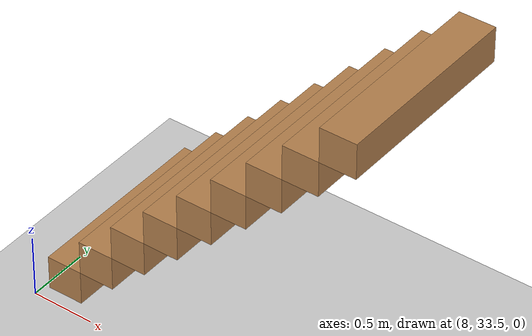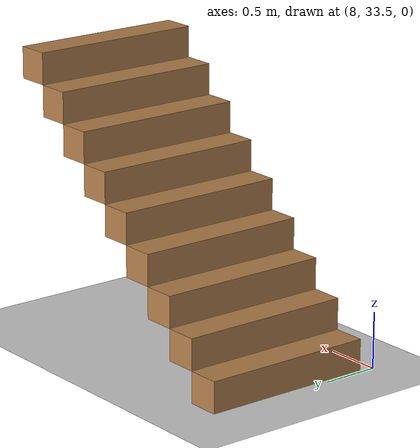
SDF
<sdf version="1.6">
 <world name="default">
  <model name="ground_plane">
   <static>1</static>
   <link name="link">
    <collision name="collision">
     <geometry><plane><normal>0 0 1</normal><size>100 100</size></plane></geometry>
     <surface><friction><ode><mu>100</mu><mu2>50</mu2></ode></friction></surface>
    </collision>
    <visual name="visual">
     <cast_shadows>0</cast_shadows>
     <geometry><plane><normal>0 0 1</normal><size>100 100</size></plane></geometry>
     <material>
      <script><uri>file://media/materials/scripts/gazebo.material</uri><name>Gazebo/Grey</name></script>
     </material>
    </visual>
   </link>
  </model>
  <model name="CVSSP">
   <pose>23.8714 24.094 0 0 -0 0</pose>
   <link name="Stairs_17">
    <visual name="Stairs_17_Visual_0">
     <pose>-15.6896 10.2929 0.138889 0 -0 1.5708</pose>
     <geometry><box><size>1.55 0.289267 0.277778</size></box></geometry>
     <material>
      <script><uri>file://media/materials/scripts/gazebo.material</uri><name>Gazebo/Wood</name></script>
      <ambient>0.588235 0.588235 0.588235 1</ambient>
     </material>
    </visual>
    <collision name="Stairs_17_Collision_0">
     <geometry><box><size>1.55 0.289267 0.277778</size></box></geometry>
     <pose>-15.6896 10.2929 0.138889 0 -0 1.5708</pose>
    </collision>
    <visual name="Stairs_17_Visual_1">
     <pose>-15.4003 10.2929 0.416667 0 -0 1.5708</pose>
     <geometry><box><size>1.55 0.289267 0.277778</size></box></geometry>
     <material>
      <script><uri>file://media/materials/scripts/gazebo.material</uri><name>Gazebo/Wood</name></script>
      <ambient>0.588235 0.588235 0.588235 1</ambient>
     </material>
    </visual>
    <collision name="Stairs_17_Collision_1">
     <geometry><box><size>1.55 0.289267 0.277778</size></box></geometry>
     <pose>-15.4003 10.2929 0.416667 0 -0 1.5708</pose>
    </collision>
    <visual name="Stairs_17_Visual_2">
     <pose>-15.1111 10.2929 0.694444 0 -0 1.5708</pose>
     <geometry><box><size>1.55 0.289267 0.277778</size></box></geometry>
     <material>
      <script><uri>file://media/materials/scripts/gazebo.material</uri><name>Gazebo/Wood</name></script>
      <ambient>0.588235 0.588235 0.588235 1</ambient>
     </material>
    </visual>
    <collision name="Stairs_17_Collision_2">
     <geometry><box><size>1.55 0.289267 0.277778</size></box></geometry>
     <pose>-15.1111 10.2929 0.694444 0 -0 1.5708</pose>
    </collision>
    <visual name="Stairs_17_Visual_3">
     <pose>-14.8218 10.2929 0.972222 0 -0 1.5708</pose>
     <geometry><box><size>1.55 0.289267 0.277778</size></box></geometry>
     <material>
      <script><uri>file://media/materials/scripts/gazebo.material</uri><name>Gazebo/Wood</name></script>
      <ambient>0.588235 0.588235 0.588235 1</ambient>
     </material>
    </visual>
    <collision name="Stairs_17_Collision_3">
     <geometry><box><size>1.55 0.289267 0.277778</size></box></geometry>
     <pose>-14.8218 10.2929 0.972222 0 -0 1.5708</pose>
    </collision>
    <visual name="Stairs_17_Visual_4">
     <pose>-14.5325 10.2929 1.25 0 -0 1.5708</pose>
     <geometry><box><size>1.55 0.289267 0.277778</size></box></geometry>
     <material>
      <script><uri>file://media/materials/scripts/gazebo.material</uri><name>Gazebo/Wood</name></script>
      <ambient>0.588235 0.588235 0.588235 1</ambient>
     </material>
    </visual>
    <collision name="Stairs_17_Collision_4">
     <geometry><box><size>1.55 0.289267 0.277778</size></box></geometry>
     <pose>-14.5325 10.2929 1.25 0 -0 1.5708</pose>
    </collision>
    <visual name="Stairs_17_Visual_5">
     <pose>-14.2433 10.2929 1.52778 0 -0 1.5708</pose>
     <geometry><box><size>1.55 0.289267 0.277778</size></box></geometry>
     <material>
      <script><uri>file://media/materials/scripts/gazebo.material</uri><name>Gazebo/Wood</name></script>
      <ambient>0.588235 0.588235 0.588235 1</ambient>
     </material>
    </visual>
    <collision name="Stairs_17_Collision_5">
     <geometry><box><size>1.55 0.289267 0.277778</size></box></geometry>
     <pose>-14.2433 10.2929 1.52778 0 -0 1.5708</pose>
    </collision>
    <visual name="Stairs_17_Visual_6">
     <pose>-13.954 10.2929 1.80556 0 -0 1.5708</pose>
     <geometry><box><size>1.55 0.289267 0.277778</size></box></geometry>
     <material>
      <script><uri>file://media/materials/scripts/gazebo.material</uri><name>Gazebo/Wood</name></script>
      <ambient>0.588235 0.588235 0.588235 1</ambient>
     </material>
    </visual>
    <collision name="Stairs_17_Collision_6">
     <geometry><box><size>1.55 0.289267 0.277778</size></box></geometry>
     <pose>-13.954 10.2929 1.80556 0 -0 1.5708</pose>
    </collision>
    <visual name="Stairs_17_Visual_7">
     <pose>-13.6647 10.2929 2.08333 0 -0 1.5708</pose>
     <geometry><box><size>1.55 0.289267 0.277778</size></box></geometry>
     <material>
      <script><uri>file://media/materials/scripts/gazebo.material</uri><name>Gazebo/Wood</name></script>
      <ambient>0.588235 0.588235 0.588235 1</ambient>
     </material>
    </visual>
    <collision name="Stairs_17_Collision_7">
     <geometry><box><size>1.55 0.289267 0.277778</size></box></geometry>
     <pose>-13.6647 10.2929 2.08333 0 -0 1.5708</pose>
    </collision>
    <visual name="Stairs_17_Visual_8">
     <pose>-13.3755 10.2929 2.36111 0 -0 1.5708</pose>
     <geometry><box><size>1.55 0.289267 0.277778</size></box></geometry>
     <material>
      <script><uri>file://media/materials/scripts/gazebo.material</uri><name>Gazebo/Wood</name></script>
      <ambient>0.588235 0.588235 0.588235 1</ambient>
     </material>
    </visual>
    <collision name="Stairs_17_Collision_8">
     <geometry><box><size>1.55 0.289267 0.277778</size></box></geometry>
     <pose>-13.3755 10.2929 2.36111 0 -0 1.5708</pose>
    </collision>
   </link>
   <static>1</static>
  </model>
 </world>
</sdf>
